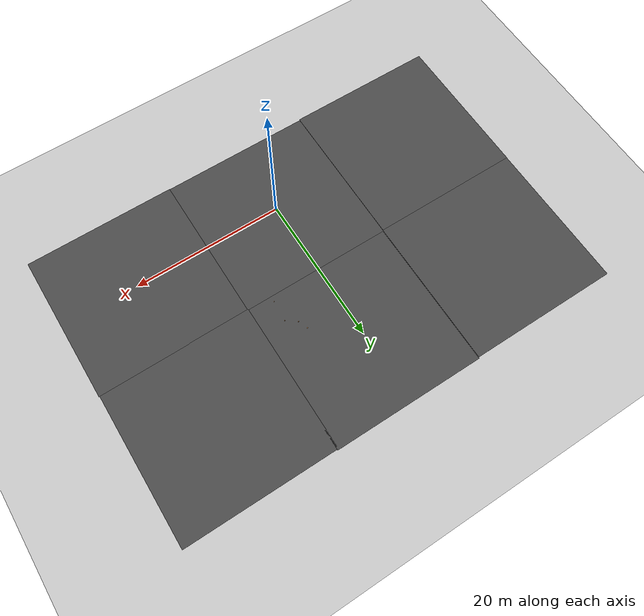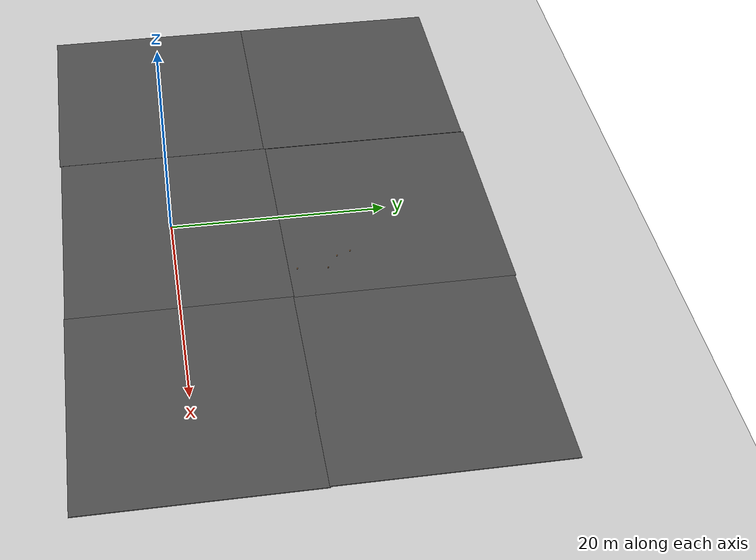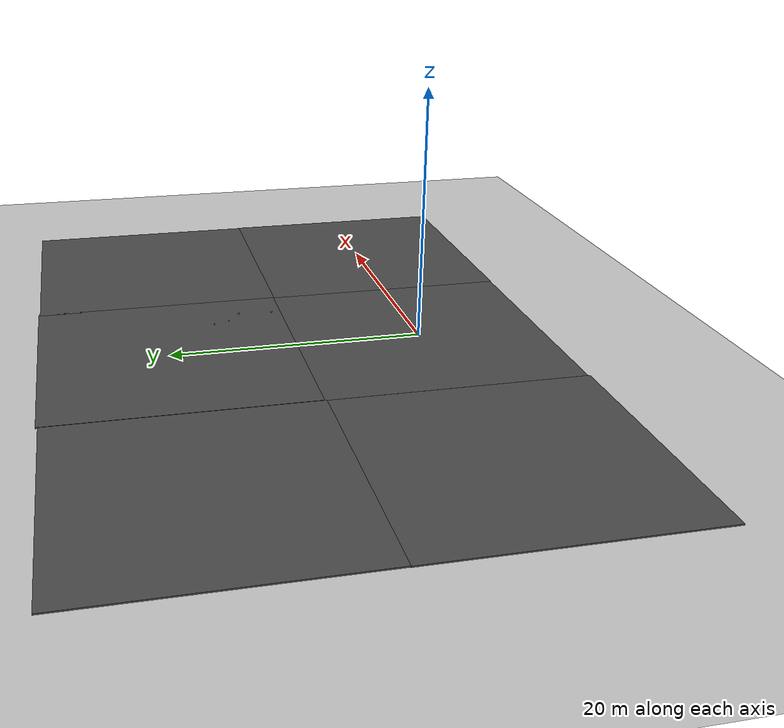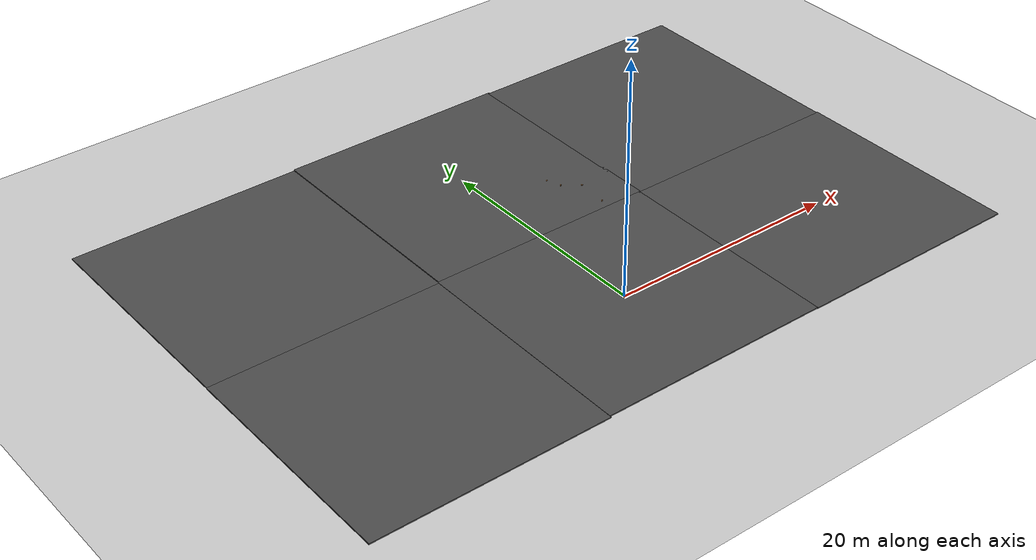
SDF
<sdf version="1.6">
 <world name="default">
  <light name="sun" type="directional">
   <pose>0 0 10 0 -0 0</pose>
   <diffuse>0.8 0.8 0.8 1</diffuse>
   <specular>0.2 0.2 0.2 1</specular>
   <attenuation>
    <range>1000</range>
    <constant>0.9</constant>
    <linear>0.01</linear>
    <quadratic>0.001</quadratic>
   </attenuation>
   <direction>-0.5 0.1 -0.9</direction>
  </light>
  <model name="ground_plane">
   <static>1</static>
   <link name="link">
    <collision name="collision">
     <geometry><plane><normal>0 0 1</normal><size>100 100</size></plane></geometry>
     <surface><friction><ode><mu>100</mu><mu2>50</mu2></ode></friction></surface>
    </collision>
    <visual name="visual">
     <cast_shadows>0</cast_shadows>
     <geometry><plane><normal>0 0 1</normal><size>100 100</size></plane></geometry>
     <material>
      <script><uri>file://media/materials/scripts/gazebo.material</uri><name>Gazebo/Grey</name></script>
     </material>
    </visual>
   </link>
  </model>
  <physics name="default_physics" default="0" type="ode">
   <max_step_size>0.01</max_step_size>
   <real_time_factor>1</real_time_factor>
   <real_time_update_rate>100</real_time_update_rate>
  </physics>
  <gravity>0 0 -9.8</gravity>
  <magnetic_field>6e-06 2.3e-05 -4.2e-05</magnetic_field>
  <atmosphere type="adiabatic"/>
  <scene><ambient>0.4 0.4 0.4 1</ambient><background>0.7 0.7 0.7 1</background><shadows>1</shadows></scene>
  <audio><device>default</device></audio>
  <spherical_coordinates>
   <surface_model>EARTH_WGS84</surface_model>
   <latitude_deg>0</latitude_deg>
   <longitude_deg>0</longitude_deg>
   <elevation>0</elevation>
   <heading_deg>0</heading_deg>
  </spherical_coordinates>
  <model name="wood_cube_10cm_clone_5">
   <link name="link">
    <pose>0 0 0.05 0 -0 0</pose>
    <inertial>
     <mass>0.5167</mass>
     <inertia>
      <ixx>0.000861167</ixx>
      <ixy>0</ixy>
      <ixz>0</ixz>
      <iyy>0.000861167</iyy>
      <iyz>0</iyz>
      <izz>0.000861167</izz>
     </inertia>
    </inertial>
    <collision name="collision">
     <geometry><box><size>0.1 0.1 0.1</size></box></geometry>
     <surface><contact><ode><max_vel>0.1</max_vel><min_depth>0.001</min_depth></ode></contact></surface>
    </collision>
    <visual name="visual">
     <geometry><box><size>0.1 0.1 0.1</size></box></geometry>
     <material>
      <script><uri>file://media/materials/scripts/gazebo.material</uri><name>Gazebo/Wood</name></script>
     </material>
    </visual>
   </link>
   <pose>5.71631 14.5527 0.099233 1.56816 -9.6e-05 2.56793</pose>
  </model>
  <model name="asphalt_plane">
   <static>1</static>
   <link name="link">
    <collision name="collision"><geometry><box><size>20 20 0.1</size></box></geometry></collision>
    <visual name="visual">
     <cast_shadows>0</cast_shadows>
     <geometry><box><size>20 20 0.1</size></box></geometry>
     <material>
      <script>
       <uri>model://asphalt_plane/materials/scripts</uri>
       <uri>model://asphalt_plane/materials/textures</uri>
       <name>vrc/asphalt</name>
      </script>
     </material>
    </visual>
   </link>
   <pose>0.151544 0.0288 0 0 -0 0</pose>
  </model>
  <model name="asphalt_plane_0">
   <static>1</static>
   <link name="link">
    <collision name="collision"><geometry><box><size>20 20 0.1</size></box></geometry></collision>
    <visual name="visual">
     <cast_shadows>0</cast_shadows>
     <geometry><box><size>20 20 0.1</size></box></geometry>
     <material>
      <script>
       <uri>model://asphalt_plane/materials/scripts</uri>
       <uri>model://asphalt_plane/materials/textures</uri>
       <name>vrc/asphalt</name>
      </script>
     </material>
    </visual>
   </link>
   <pose>20.0491 19.9098 0 0 -0 0</pose>
  </model>
  <model name="asphalt_plane_1">
   <static>1</static>
   <link name="link">
    <collision name="collision"><geometry><box><size>20 20 0.1</size></box></geometry></collision>
    <visual name="visual">
     <cast_shadows>0</cast_shadows>
     <geometry><box><size>20 20 0.1</size></box></geometry>
     <material>
      <script>
       <uri>model://asphalt_plane/materials/scripts</uri>
       <uri>model://asphalt_plane/materials/textures</uri>
       <name>vrc/asphalt</name>
      </script>
     </material>
    </visual>
   </link>
   <pose>0.227237 20.0268 0 0 -0 0</pose>
  </model>
  <model name="asphalt_plane_0_clone">
   <static>1</static>
   <link name="link">
    <collision name="collision"><geometry><box><size>20 20 0.1</size></box></geometry></collision>
    <visual name="visual">
     <cast_shadows>0</cast_shadows>
     <geometry><box><size>20 20 0.1</size></box></geometry>
     <material>
      <script>
       <uri>model://asphalt_plane/materials/scripts</uri>
       <uri>model://asphalt_plane/materials/textures</uri>
       <name>vrc/asphalt</name>
      </script>
     </material>
    </visual>
   </link>
   <pose>20.1439 -0.026357 0 0 -0 0</pose>
  </model>
  <model name="asphalt_plane_1_clone">
   <static>1</static>
   <link name="link">
    <collision name="collision"><geometry><box><size>20 20 0.1</size></box></geometry></collision>
    <visual name="visual">
     <cast_shadows>0</cast_shadows>
     <geometry><box><size>20 20 0.1</size></box></geometry>
     <material>
      <script>
       <uri>model://asphalt_plane/materials/scripts</uri>
       <uri>model://asphalt_plane/materials/textures</uri>
       <name>vrc/asphalt</name>
      </script>
     </material>
    </visual>
   </link>
   <pose>-19.8301 19.876 0 0 -0 0</pose>
  </model>
  <model name="asphalt_plane_1_clone_clone">
   <static>1</static>
   <link name="link">
    <collision name="collision"><geometry><box><size>20 20 0.1</size></box></geometry></collision>
    <visual name="visual">
     <cast_shadows>0</cast_shadows>
     <geometry><box><size>20 20 0.1</size></box></geometry>
     <material>
      <script>
       <uri>model://asphalt_plane/materials/scripts</uri>
       <uri>model://asphalt_plane/materials/textures</uri>
       <name>vrc/asphalt</name>
      </script>
     </material>
    </visual>
   </link>
   <pose>-19.8599 -0.11229 0 0 -0 0</pose>
  </model>
  <model name="wood_cube_10cm_clone_5_clone">
   <link name="link">
    <pose>0 0 0.05 0 -0 0</pose>
    <inertial>
     <mass>0.5167</mass>
     <inertia>
      <ixx>0.000861167</ixx>
      <ixy>0</ixy>
      <ixz>0</ixz>
      <iyy>0.000861167</iyy>
      <iyz>0</iyz>
      <izz>0.000861167</izz>
     </inertia>
    </inertial>
    <collision name="collision">
     <geometry><box><size>0.1 0.1 0.1</size></box></geometry>
     <surface><contact><ode><max_vel>0.1</max_vel><min_depth>0.001</min_depth></ode></contact></surface>
    </collision>
    <visual name="visual">
     <geometry><box><size>0.1 0.1 0.1</size></box></geometry>
     <material>
      <script><uri>file://media/materials/scripts/gazebo.material</uri><name>Gazebo/Wood</name></script>
     </material>
    </visual>
   </link>
   <pose>6.91307 10.8535 0.099516 0.39309 -1.56881 0.676179</pose>
  </model>
  <model name="wood_cube_10cm_clone_5_clone_0">
   <link name="link">
    <pose>0 0 0.05 0 -0 0</pose>
    <inertial>
     <mass>0.5167</mass>
     <inertia>
      <ixx>0.000861167</ixx>
      <ixy>0</ixy>
      <ixz>0</ixz>
      <iyy>0.000861167</iyy>
      <iyz>0</iyz>
      <izz>0.000861167</izz>
     </inertia>
    </inertial>
    <collision name="collision">
     <geometry><box><size>0.1 0.1 0.1</size></box></geometry>
     <surface><contact><ode><max_vel>0.1</max_vel><min_depth>0.001</min_depth></ode></contact></surface>
    </collision>
    <visual name="visual">
     <geometry><box><size>0.1 0.1 0.1</size></box></geometry>
     <material>
      <script><uri>file://media/materials/scripts/gazebo.material</uri><name>Gazebo/Wood</name></script>
     </material>
    </visual>
   </link>
   <pose>7.10705 13.6176 0.099025 -0.061444 1.56974 -1.9902</pose>
  </model>
  <model name="wood_cube_10cm_clone_5_clone_1">
   <link name="link">
    <pose>0 0 0.05 0 -0 0</pose>
    <inertial>
     <mass>0.5167</mass>
     <inertia>
      <ixx>0.000861167</ixx>
      <ixy>0</ixy>
      <ixz>0</ixz>
      <iyy>0.000861167</iyy>
      <iyz>0</iyz>
      <izz>0.000861167</izz>
     </inertia>
    </inertial>
    <collision name="collision">
     <geometry><box><size>0.1 0.1 0.1</size></box></geometry>
     <surface><contact><ode><max_vel>0.1</max_vel><min_depth>0.001</min_depth></ode></contact></surface>
    </collision>
    <visual name="visual">
     <geometry><box><size>0.1 0.1 0.1</size></box></geometry>
     <material>
      <script><uri>file://media/materials/scripts/gazebo.material</uri><name>Gazebo/Wood</name></script>
     </material>
    </visual>
   </link>
   <pose>5.24184 15.8898 0.099091 -1.5713 -5.8e-05 -1.89934</pose>
  </model>
 </world>
</sdf>
